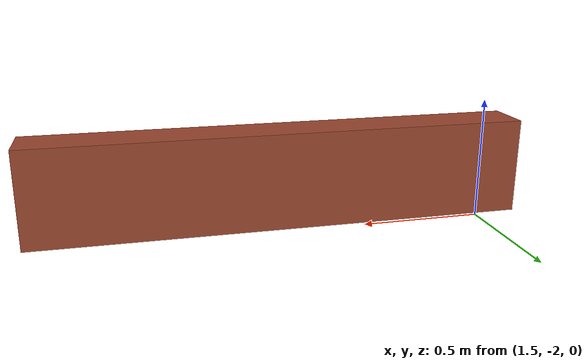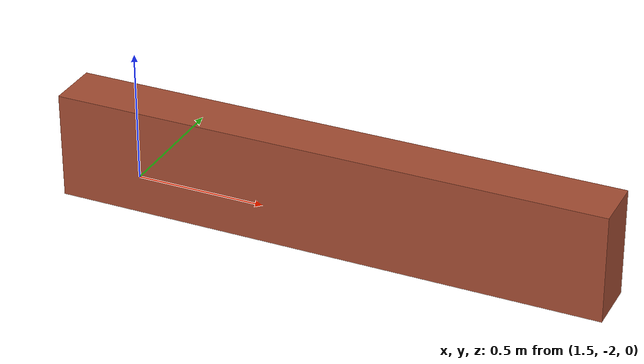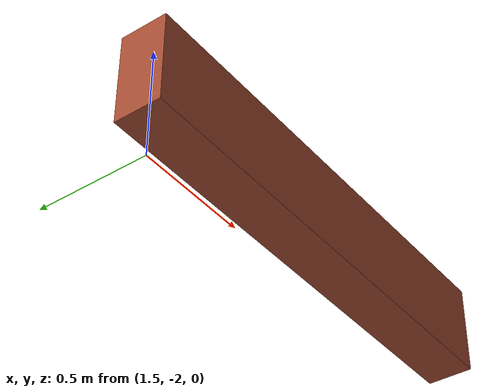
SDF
<?xml version='1.0'?>
<sdf version='1.7'>
  <model name='cover'>
    <pose>1.68 -1.11 0 0 -0 0</pose>
    <link name='Wall_2'>
      <collision name='Wall_2_Collision'>
        <geometry>
          <box>
            <size>2.05 0.2 0.4</size>
          </box>
        </geometry>
        <pose>0 0 0.2 0 -0 0</pose>
      </collision>
      <visual name='Wall_2_Visual'>
        <pose>0 0 0.2 0 -0 0</pose>
        <geometry>
          <box>
            <size>2.05 0.2 0.4</size>
          </box>
        </geometry>
        <material>
          <script>
            <uri>file://media/materials/scripts/gazebo.material</uri>
            <name>Gazebo/Bricks</name>
          </script>
          <ambient>1 1 1 1</ambient>
        </material>
        <meta>
          <layer>0</layer>
        </meta>
      </visual>
      <pose>0.655 -1.01 0 0 -0 0</pose>
    </link>
    <static>1</static>
  </model>
</sdf>
